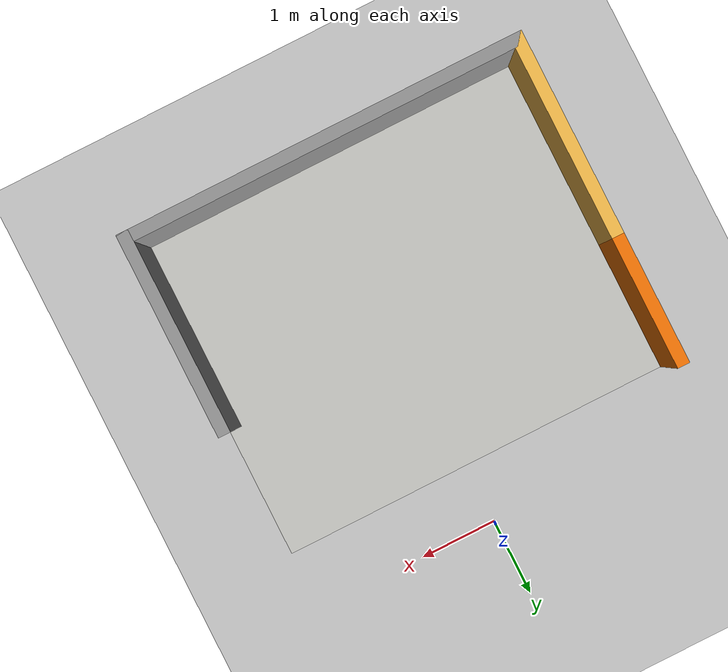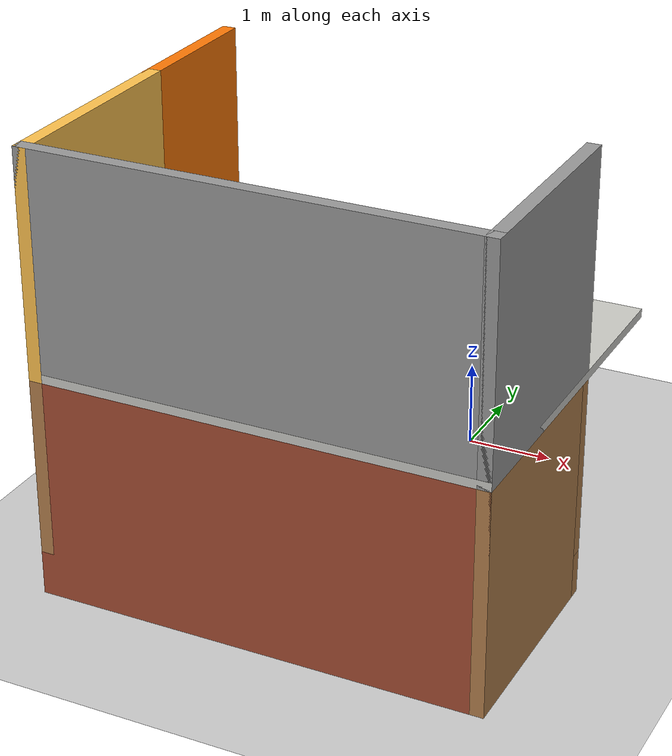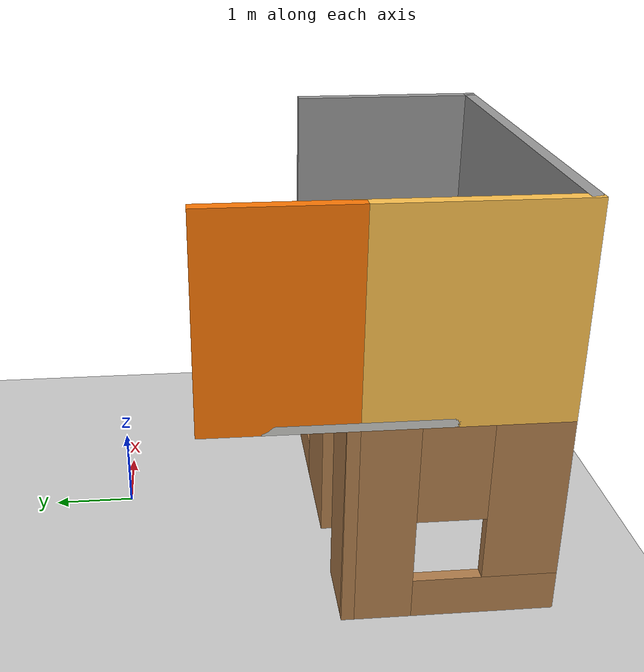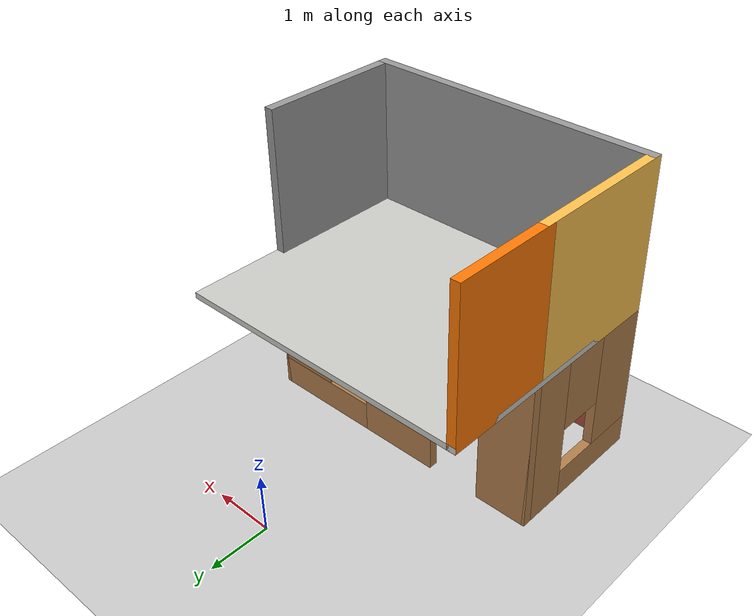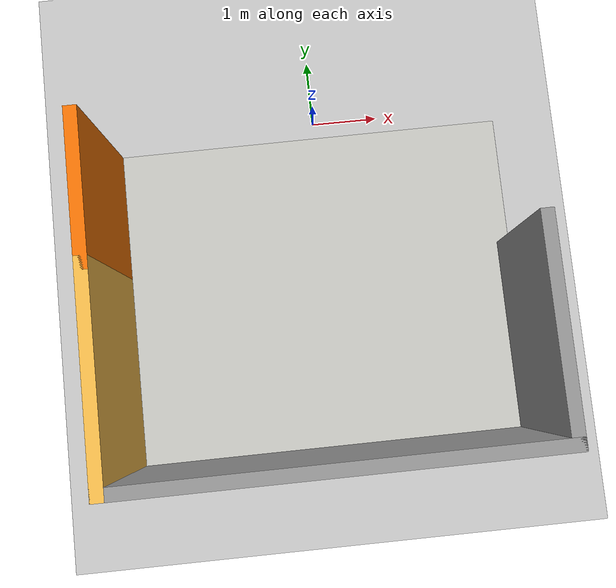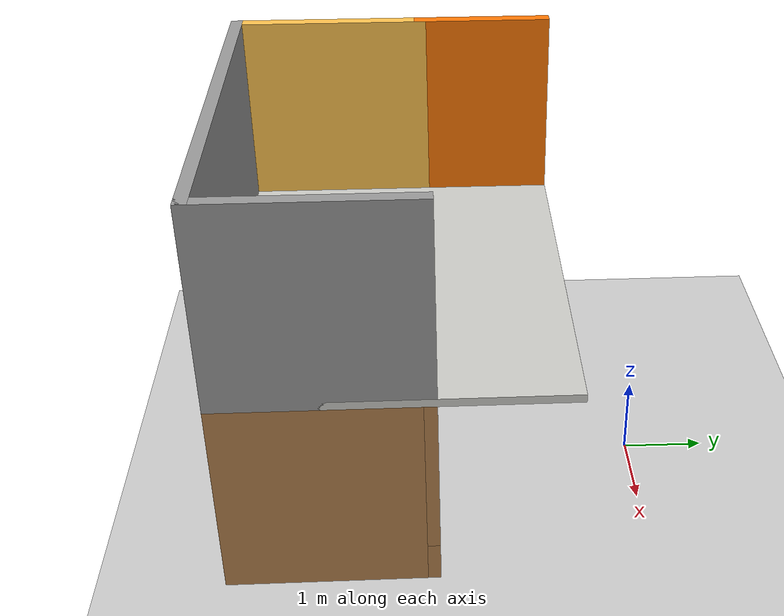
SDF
<sdf version="1.6">
 <world name="default">
  <model name="ground_plane">
   <static>1</static>
   <link name="link">
    <collision name="collision">
     <geometry><plane><normal>0 0 1</normal><size>100 100</size></plane></geometry>
     <surface>
      <contact><collide_bitmask>65535</collide_bitmask></contact>
      <friction><ode><mu>100</mu><mu2>50</mu2></ode></friction>
     </surface>
    </collision>
    <visual name="visual">
     <cast_shadows>0</cast_shadows>
     <geometry><plane><normal>0 0 1</normal><size>100 100</size></plane></geometry>
     <material>
      <script><uri>file://media/materials/scripts/gazebo.material</uri><name>Gazebo/Grey</name></script>
     </material>
    </visual>
   </link>
  </model>
  <model name="Roost">
   <pose>-0.21194 -2.95415 0 0 -0 0</pose>
   <link name="Floor_2">
    <collision name="Floor_2_Collision">
     <geometry><box><size>5 4.1 0.1</size></box></geometry>
     <pose>0 0 0.05 0 -0 0</pose>
    </collision>
    <visual name="Floor_2_Visual">
     <pose>0 0 0.05 0 -0 0</pose>
     <geometry><box><size>5 4.1 0.1</size></box></geometry>
     <material>
      <script><uri>file://media/materials/scripts/gazebo.material</uri><name>Gazebo/CeilingTiled</name></script>
      <ambient>1 1 1 1</ambient>
     </material>
     <meta><layer>1</layer></meta>
    </visual>
    <pose>0 0 2.5 0 -0 0</pose>
   </link>
   <link name="Wall_0">
    <pose>-2.425 -0.8 0 0 -0 -1.5708</pose>
    <visual name="Wall_0_Visual_0">
     <pose>-0.842552 0 1.25 0 -0 0</pose>
     <geometry><box><size>0.814896 0.15 2.5</size></box></geometry>
     <material>
      <script><uri>file://media/materials/scripts/gazebo.material</uri><name>Gazebo/Wood</name></script>
      <ambient>1 1 1 1</ambient>
     </material>
     <meta><layer>0</layer></meta>
    </visual>
    <collision name="Wall_0_Collision_0">
     <geometry><box><size>0.814896 0.15 2.5</size></box></geometry>
     <pose>-0.842552 0 1.25 0 -0 0</pose>
    </collision>
    <visual name="Wall_0_Visual_1">
     <pose>0.407448 0 0.25 0 -0 0</pose>
     <geometry><box><size>1.6851 0.15 0.5</size></box></geometry>
     <material>
      <script><uri>file://media/materials/scripts/gazebo.material</uri><name>Gazebo/Wood</name></script>
      <ambient>1 1 1 1</ambient>
     </material>
     <meta><layer>0</layer></meta>
    </visual>
    <collision name="Wall_0_Collision_1">
     <geometry><box><size>1.6851 0.15 0.5</size></box></geometry>
     <pose>0.407448 0 0.25 0 -0 0</pose>
    </collision>
    <visual name="Wall_0_Visual_2">
     <pose>0.807448 0 1.5 0 -0 0</pose>
     <geometry><box><size>0.885104 0.15 2</size></box></geometry>
     <material>
      <script><uri>file://media/materials/scripts/gazebo.material</uri><name>Gazebo/Wood</name></script>
      <ambient>1 1 1 1</ambient>
     </material>
     <meta><layer>0</layer></meta>
    </visual>
    <collision name="Wall_0_Collision_2">
     <geometry><box><size>0.885104 0.15 2</size></box></geometry>
     <pose>0.807448 0 1.5 0 -0 0</pose>
    </collision>
    <visual name="Wall_0_Visual_3">
     <pose>-0.035104 0 1.9 0 -0 0</pose>
     <geometry><box><size>0.8 0.15 1.2</size></box></geometry>
     <material>
      <script><uri>file://media/materials/scripts/gazebo.material</uri><name>Gazebo/Wood</name></script>
      <ambient>1 1 1 1</ambient>
     </material>
     <meta><layer>0</layer></meta>
    </visual>
    <collision name="Wall_0_Collision_3">
     <geometry><box><size>0.8 0.15 1.2</size></box></geometry>
     <pose>-0.035104 0 1.9 0 -0 0</pose>
    </collision>
   </link>
   <link name="Wall_1">
    <collision name="Wall_1_Collision">
     <geometry><box><size>5 0.15 2.5</size></box></geometry>
     <pose>0 0 1.25 0 -0 0</pose>
    </collision>
    <visual name="Wall_1_Visual">
     <pose>0 0 1.25 0 -0 0</pose>
     <geometry><box><size>5 0.15 2.5</size></box></geometry>
     <material>
      <script><uri>file://media/materials/scripts/gazebo.material</uri><name>Gazebo/Bricks</name></script>
      <ambient>1 1 1 1</ambient>
     </material>
     <meta><layer>0</layer></meta>
    </visual>
    <pose>0 -1.975 0 0 -0 0</pose>
   </link>
   <link name="Wall_19">
    <collision name="Wall_19_Collision">
     <geometry><box><size>2.5 0.15 2.5</size></box></geometry>
     <pose>0 0 1.25 0 -0 0</pose>
    </collision>
    <visual name="Wall_19_Visual">
     <pose>0 0 1.25 0 -0 0</pose>
     <geometry><box><size>2.5 0.15 2.5</size></box></geometry>
     <material>
      <script><uri>file://media/materials/scripts/gazebo.material</uri><name>Gazebo/Grey</name></script>
      <ambient>1 0.764706 0.305882 1</ambient>
     </material>
     <meta><layer>1</layer></meta>
    </visual>
    <pose>-2.425 -0.8 2.5 0 -0 -1.5708</pose>
   </link>
   <link name="Wall_2">
    <collision name="Wall_2_Collision">
     <geometry><box><size>2.5 0.15 2.5</size></box></geometry>
     <pose>0 0 1.25 0 -0 0</pose>
    </collision>
    <visual name="Wall_2_Visual">
     <pose>0 0 1.25 0 -0 0</pose>
     <geometry><box><size>2.5 0.15 2.5</size></box></geometry>
     <material>
      <script><uri>file://media/materials/scripts/gazebo.material</uri><name>Gazebo/Wood</name></script>
      <ambient>1 1 1 1</ambient>
     </material>
     <meta><layer>0</layer></meta>
    </visual>
    <pose>2.425 -0.8 0 0 -0 1.5708</pose>
   </link>
   <link name="Wall_20">
    <collision name="Wall_20_Collision">
     <geometry><box><size>5 0.15 2.5</size></box></geometry>
     <pose>0 0 1.25 0 -0 0</pose>
    </collision>
    <visual name="Wall_20_Visual">
     <pose>0 0 1.25 0 -0 0</pose>
     <geometry><box><size>5 0.15 2.5</size></box></geometry>
     <material>
      <script><uri>file://media/materials/scripts/gazebo.material</uri><name>Gazebo/Grey</name></script>
      <ambient>1 1 1 1</ambient>
     </material>
     <meta><layer>1</layer></meta>
    </visual>
    <pose>0 -1.975 2.5 0 -0 0</pose>
   </link>
   <link name="Wall_21">
    <collision name="Wall_21_Collision">
     <geometry><box><size>2.5 0.15 2.5</size></box></geometry>
     <pose>0 0 1.25 0 -0 0</pose>
    </collision>
    <visual name="Wall_21_Visual">
     <pose>0 0 1.25 0 -0 0</pose>
     <geometry><box><size>2.5 0.15 2.5</size></box></geometry>
     <material>
      <script><uri>file://media/materials/scripts/gazebo.material</uri><name>Gazebo/Grey</name></script>
      <ambient>1 1 1 1</ambient>
     </material>
     <meta><layer>1</layer></meta>
    </visual>
    <pose>2.425 -0.8 2.5 0 -0 1.5708</pose>
   </link>
   <link name="Wall_24">
    <collision name="Wall_24_Collision">
     <geometry><box><size>1.75 0.15 2.5</size></box></geometry>
     <pose>0 0 1.25 0 -0 0</pose>
    </collision>
    <visual name="Wall_24_Visual">
     <pose>0 0 1.25 0 -0 0</pose>
     <geometry><box><size>1.75 0.15 2.5</size></box></geometry>
     <material>
      <script><uri>file://media/materials/scripts/gazebo.material</uri><name>Gazebo/Grey</name></script>
      <ambient>0.996078 0.47451 0.0196078 1</ambient>
     </material>
     <meta><layer>1</layer></meta>
    </visual>
    <pose>-2.425 1.175 2.5 0 -0 1.5708</pose>
   </link>
   <link name="Wall_27">
    <pose>0 0.375 0 0 -0 0</pose>
    <visual name="Wall_27_Visual_0">
     <pose>-2.05224 0 1.25 0 -0 0</pose>
     <geometry><box><size>0.895519 0.15 2.5</size></box></geometry>
     <material>
      <script><uri>file://media/materials/scripts/gazebo.material</uri><name>Gazebo/Wood</name></script>
      <ambient>1 1 1 1</ambient>
     </material>
     <meta><layer>0</layer></meta>
    </visual>
    <collision name="Wall_27_Collision_0">
     <geometry><box><size>0.895519 0.15 2.5</size></box></geometry>
     <pose>-2.05224 0 1.25 0 -0 0</pose>
    </collision>
    <visual name="Wall_27_Visual_1">
     <pose>-0.03198 0 1.25 0 -0 0</pose>
     <geometry><box><size>1.345 0.15 2.5</size></box></geometry>
     <material>
      <script><uri>file://media/materials/scripts/gazebo.material</uri><name>Gazebo/Wood</name></script>
      <ambient>1 1 1 1</ambient>
     </material>
     <meta><layer>0</layer></meta>
    </visual>
    <collision name="Wall_27_Collision_1">
     <geometry><box><size>1.345 0.15 2.5</size></box></geometry>
     <pose>-0.03198 0 1.25 0 -0 0</pose>
    </collision>
    <visual name="Wall_27_Visual_2">
     <pose>1.57026 0 0.25 0 -0 0</pose>
     <geometry><box><size>1.85948 0.15 0.5</size></box></geometry>
     <material>
      <script><uri>file://media/materials/scripts/gazebo.material</uri><name>Gazebo/Wood</name></script>
      <ambient>1 1 1 1</ambient>
     </material>
     <meta><layer>0</layer></meta>
    </visual>
    <collision name="Wall_27_Collision_2">
     <geometry><box><size>1.85948 0.15 0.5</size></box></geometry>
     <pose>1.57026 0 0.25 0 -0 0</pose>
    </collision>
    <visual name="Wall_27_Visual_3">
     <pose>1.97026 0 1.5 0 -0 0</pose>
     <geometry><box><size>1.05948 0.15 2</size></box></geometry>
     <material>
      <script><uri>file://media/materials/scripts/gazebo.material</uri><name>Gazebo/Wood</name></script>
      <ambient>1 1 1 1</ambient>
     </material>
     <meta><layer>0</layer></meta>
    </visual>
    <collision name="Wall_27_Collision_3">
     <geometry><box><size>1.05948 0.15 2</size></box></geometry>
     <pose>1.97026 0 1.5 0 -0 0</pose>
    </collision>
    <visual name="Wall_27_Visual_4">
     <pose>1.04052 0 1.9 0 -0 0</pose>
     <geometry><box><size>0.8 0.15 1.2</size></box></geometry>
     <material>
      <script><uri>file://media/materials/scripts/gazebo.material</uri><name>Gazebo/Wood</name></script>
      <ambient>1 1 1 1</ambient>
     </material>
     <meta><layer>0</layer></meta>
    </visual>
    <collision name="Wall_27_Collision_4">
     <geometry><box><size>0.8 0.15 1.2</size></box></geometry>
     <pose>1.04052 0 1.9 0 -0 0</pose>
    </collision>
    <visual name="Wall_27_Visual_5">
     <pose>-1.15448 0 2.25 0 -0 0</pose>
     <geometry><box><size>0.9 0.15 0.5</size></box></geometry>
     <material>
      <script><uri>file://media/materials/scripts/gazebo.material</uri><name>Gazebo/Wood</name></script>
      <ambient>1 1 1 1</ambient>
     </material>
     <meta><layer>0</layer></meta>
    </visual>
    <collision name="Wall_27_Collision_5">
     <geometry><box><size>0.9 0.15 0.5</size></box></geometry>
     <pose>-1.15448 0 2.25 0 -0 0</pose>
    </collision>
   </link>
   <static>1</static>
  </model>
 </world>
</sdf>
